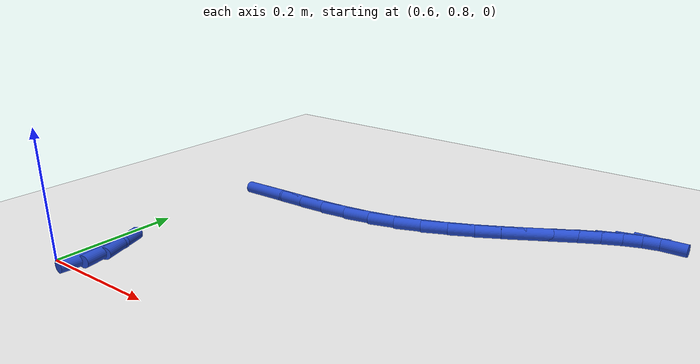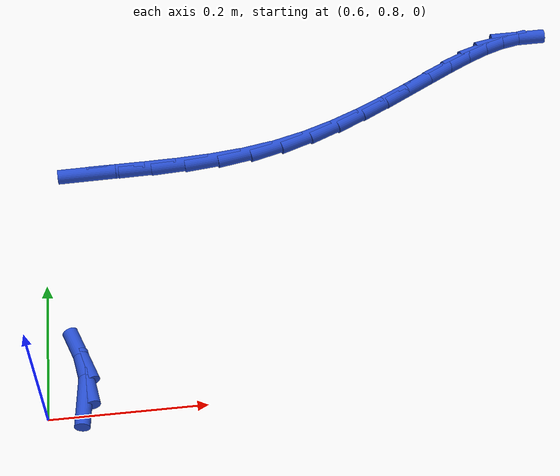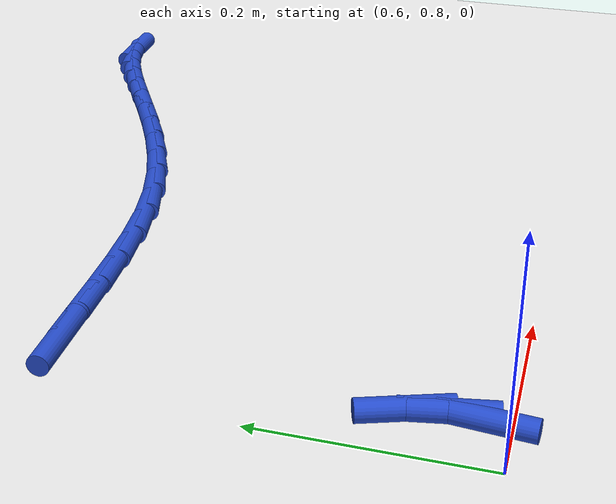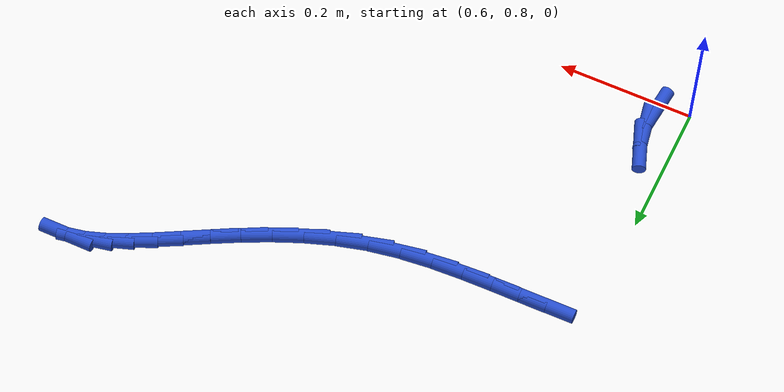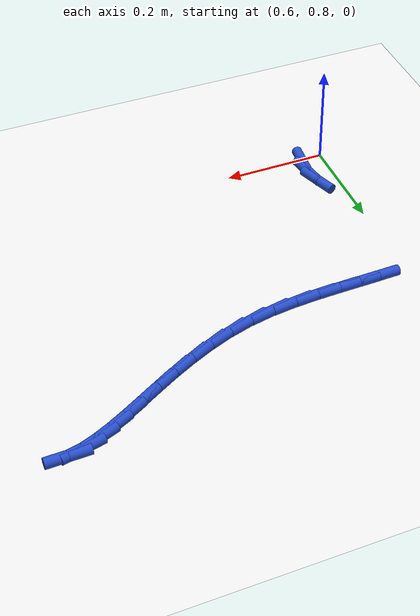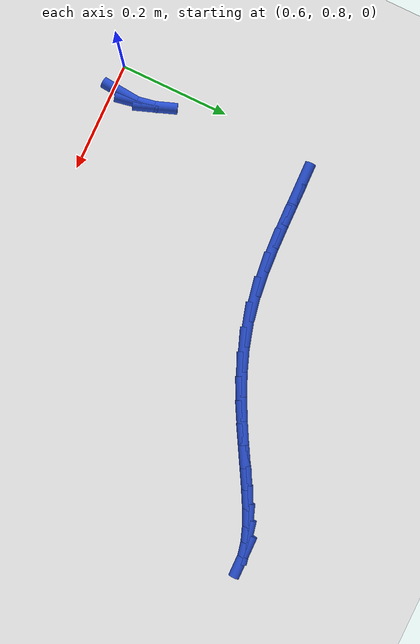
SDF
<sdf version="1.6">
 <world name="default">
  <model name="ground_plane">
   <static>1</static>
   <link name="link">
    <collision name="collision">
     <geometry><plane><normal>0 0 1</normal><size>100 100</size></plane></geometry>
     <surface><friction><ode><mu>100</mu><mu2>50</mu2></ode></friction></surface>
    </collision>
    <visual name="visual">
     <cast_shadows>0</cast_shadows>
     <geometry><plane><normal>0 0 1</normal><size>100 100</size></plane></geometry>
     <material>
      <script><uri>file://media/materials/scripts/gazebo.material</uri><name>Gazebo/WhiteGlow</name></script>
     </material>
    </visual>
   </link>
  </model>
  <model name="line">
   <link name="link_32">
    <pose>0.6466942165314001 0.8195110774820759 0.01 0 1.57 1.4784292683458358</pose>
    <collision name="collision">
     <geometry><cylinder><radius>0.01</radius><length>0.08</length></cylinder></geometry>
    </collision>
    <visual name="visual">
     <material>
      <script><name>Gazebo/Blue</name><uri>file://media/materials/scripts/gazebo.material</uri></script>
     </material>
     <geometry><cylinder><radius>0.01</radius><length>0.08</length></cylinder></geometry>
    </visual>
   </link>
   <link name="link_33">
    <pose>0.6494150384664269 0.8488838847848167 0.01 0 1.57 -1.3870676291814041</pose>
    <collision name="collision">
     <geometry><cylinder><radius>0.01</radius><length>0.08</length></cylinder></geometry>
    </collision>
    <visual name="visual">
     <material>
      <script><name>Gazebo/Blue</name><uri>file://media/materials/scripts/gazebo.material</uri></script>
     </material>
     <geometry><cylinder><radius>0.01</radius><length>0.08</length></cylinder></geometry>
    </visual>
   </link>
   <link name="link_34">
    <pose>0.6433069420436678 0.8817541579425682 0.01 0 1.57 -1.2231525068888396</pose>
    <collision name="collision">
     <geometry><cylinder><radius>0.01</radius><length>0.08</length></cylinder></geometry>
    </collision>
    <visual name="visual">
     <material>
      <script><name>Gazebo/Blue</name><uri>file://media/materials/scripts/gazebo.material</uri></script>
     </material>
     <geometry><cylinder><radius>0.01</radius><length>0.08</length></cylinder></geometry>
    </visual>
   </link>
   <link name="link_47">
    <pose>0.6569544206246336 1.1762229694583328 0.01 0 1.57 0.02289232079759322</pose>
    <collision name="collision">
     <geometry><cylinder><radius>0.01</radius><length>0.08</length></cylinder></geometry>
    </collision>
    <visual name="visual">
     <material>
      <script><name>Gazebo/Blue</name><uri>file://media/materials/scripts/gazebo.material</uri></script>
     </material>
     <geometry><cylinder><radius>0.01</radius><length>0.08</length></cylinder></geometry>
    </visual>
   </link>
   <link name="link_48">
    <pose>0.697269159671963 1.1771460286487352 0.01 0 1.57 0.016369971682927607</pose>
    <collision name="collision">
     <geometry><cylinder><radius>0.01</radius><length>0.08</length></cylinder></geometry>
    </collision>
    <visual name="visual">
     <material>
      <script><name>Gazebo/Blue</name><uri>file://media/materials/scripts/gazebo.material</uri></script>
     </material>
     <geometry><cylinder><radius>0.01</radius><length>0.08</length></cylinder></geometry>
    </visual>
   </link>
   <link name="link_49">
    <pose>0.7405746767513468 1.1778550020674512 0.01 0 1.57 0.03058642708066966</pose>
    <collision name="collision">
     <geometry><cylinder><radius>0.01</radius><length>0.08</length></cylinder></geometry>
    </collision>
    <visual name="visual">
     <material>
      <script><name>Gazebo/Blue</name><uri>file://media/materials/scripts/gazebo.material</uri></script>
     </material>
     <geometry><cylinder><radius>0.01</radius><length>0.08</length></cylinder></geometry>
    </visual>
   </link>
   <link name="link_50">
    <pose>0.7858508625001561 1.179240270834902 0.01 0 1.57 0.06377136231184242</pose>
    <collision name="collision">
     <geometry><cylinder><radius>0.01</radius><length>0.08</length></cylinder></geometry>
    </collision>
    <visual name="visual">
     <material>
      <script><name>Gazebo/Blue</name><uri>file://media/materials/scripts/gazebo.material</uri></script>
     </material>
     <geometry><cylinder><radius>0.01</radius><length>0.08</length></cylinder></geometry>
    </visual>
   </link>
   <link name="link_51">
    <pose>0.8320776075557633 1.1821922160715104 0.01 0 1.57 0.1166545065703392</pose>
    <collision name="collision">
     <geometry><cylinder><radius>0.01</radius><length>0.08</length></cylinder></geometry>
    </collision>
    <visual name="visual">
     <material>
      <script><name>Gazebo/Blue</name><uri>file://media/materials/scripts/gazebo.material</uri></script>
     </material>
     <geometry><cylinder><radius>0.01</radius><length>0.08</length></cylinder></geometry>
    </visual>
   </link>
   <link name="link_52">
    <pose>0.8782348025555402 1.1876012188976983 0.01 0 1.57 0.19184275539186518</pose>
    <collision name="collision">
     <geometry><cylinder><radius>0.01</radius><length>0.08</length></cylinder></geometry>
    </collision>
    <visual name="visual">
     <material>
      <script><name>Gazebo/Blue</name><uri>file://media/materials/scripts/gazebo.material</uri></script>
     </material>
     <geometry><cylinder><radius>0.01</radius><length>0.08</length></cylinder></geometry>
    </visual>
   </link>
   <link name="link_53">
    <pose>0.9233039177754145 1.196355057614738 0.01 0 1.57 0.2810676748567286</pose>
    <collision name="collision">
     <geometry><cylinder><radius>0.01</radius><length>0.08</length></cylinder></geometry>
    </collision>
    <visual name="visual">
     <material>
      <script><name>Gazebo/Blue</name><uri>file://media/materials/scripts/gazebo.material</uri></script>
     </material>
     <geometry><cylinder><radius>0.01</radius><length>0.08</length></cylinder></geometry>
    </visual>
   </link>
   <link name="link_54">
    <pose>0.9665673468203768 1.2088456698768362 0.01 0 1.57 0.3591092523486554</pose>
    <collision name="collision">
     <geometry><cylinder><radius>0.01</radius><length>0.08</length></cylinder></geometry>
    </collision>
    <visual name="visual">
     <material>
      <script><name>Gazebo/Blue</name><uri>file://media/materials/scripts/gazebo.material</uri></script>
     </material>
     <geometry><cylinder><radius>0.01</radius><length>0.08</length></cylinder></geometry>
    </visual>
   </link>
   <link name="link_55">
    <pose>1.0079629256603058 1.2243850007456292 0.01 0 1.57 0.4220027273728106</pose>
    <collision name="collision">
     <geometry><cylinder><radius>0.01</radius><length>0.08</length></cylinder></geometry>
    </collision>
    <visual name="visual">
     <material>
      <script><name>Gazebo/Blue</name><uri>file://media/materials/scripts/gazebo.material</uri></script>
     </material>
     <geometry><cylinder><radius>0.01</radius><length>0.08</length></cylinder></geometry>
    </visual>
   </link>
   <link name="link_56">
    <pose>1.047514754383584 1.2421428552350848 0.01 0 1.57 0.46956852440720714</pose>
    <collision name="collision">
     <geometry><cylinder><radius>0.01</radius><length>0.08</length></cylinder></geometry>
    </collision>
    <visual name="visual">
     <material>
      <script><name>Gazebo/Blue</name><uri>file://media/materials/scripts/gazebo.material</uri></script>
     </material>
     <geometry><cylinder><radius>0.01</radius><length>0.08</length></cylinder></geometry>
    </visual>
   </link>
   <link name="link_57">
    <pose>1.085246933078594 1.2612890383591713 0.01 0 1.57 0.5015427233821299</pose>
    <collision name="collision">
     <geometry><cylinder><radius>0.01</radius><length>0.08</length></cylinder></geometry>
    </collision>
    <visual name="visual">
     <material>
      <script><name>Gazebo/Blue</name><uri>file://media/materials/scripts/gazebo.material</uri></script>
     </material>
     <geometry><cylinder><radius>0.01</radius><length>0.08</length></cylinder></geometry>
    </visual>
   </link>
   <link name="link_58">
    <pose>1.1211835618337176 1.2809933551318569 0.01 0 1.57 0.5171424657023757</pose>
    <collision name="collision">
     <geometry><cylinder><radius>0.01</radius><length>0.08</length></cylinder></geometry>
    </collision>
    <visual name="visual">
     <material>
      <script><name>Gazebo/Blue</name><uri>file://media/materials/scripts/gazebo.material</uri></script>
     </material>
     <geometry><cylinder><radius>0.01</radius><length>0.08</length></cylinder></geometry>
    </visual>
   </link>
   <link name="link_59">
    <pose>1.1553487407373375 1.3004256105671101 0.01 0 1.57 0.5146121025029433</pose>
    <collision name="collision">
     <geometry><cylinder><radius>0.01</radius><length>0.08</length></cylinder></geometry>
    </collision>
    <visual name="visual">
     <material>
      <script><name>Gazebo/Blue</name><uri>file://media/materials/scripts/gazebo.material</uri></script>
     </material>
     <geometry><cylinder><radius>0.01</radius><length>0.08</length></cylinder></geometry>
    </visual>
   </link>
   <link name="link_60">
    <pose>1.1877665698778361 1.3187556096788993 0.01 0 1.57 0.4906445843342437</pose>
    <collision name="collision">
     <geometry><cylinder><radius>0.01</radius><length>0.08</length></cylinder></geometry>
    </collision>
    <visual name="visual">
     <material>
      <script><name>Gazebo/Blue</name><uri>file://media/materials/scripts/gazebo.material</uri></script>
     </material>
     <geometry><cylinder><radius>0.01</radius><length>0.08</length></cylinder></geometry>
    </visual>
   </link>
   <link name="link_61">
    <pose>1.2184611493435957 1.3351531574811926 0.01 0 1.57 0.4395600031045086</pose>
    <collision name="collision">
     <geometry><cylinder><radius>0.01</radius><length>0.08</length></cylinder></geometry>
    </collision>
    <visual name="visual">
     <material>
      <script><name>Gazebo/Blue</name><uri>file://media/materials/scripts/gazebo.material</uri></script>
     </material>
     <geometry><cylinder><radius>0.01</radius><length>0.08</length></cylinder></geometry>
    </visual>
   </link>
   <link name="link_62">
    <pose>1.2474565792229988 1.3487880589879582 0.01 0 1.57 0.3522378732071377</pose>
    <collision name="collision">
     <geometry><cylinder><radius>0.01</radius><length>0.08</length></cylinder></geometry>
    </collision>
    <visual name="visual">
     <material>
      <script><name>Gazebo/Blue</name><uri>file://media/materials/scripts/gazebo.material</uri></script>
     </material>
     <geometry><cylinder><radius>0.01</radius><length>0.08</length></cylinder></geometry>
    </visual>
   </link>
   <link name="link_63">
    <pose>1.2747769596044272 1.3588301192131642 0.01 0 1.57 0.21550030688081537</pose>
    <collision name="collision">
     <geometry><cylinder><radius>0.01</radius><length>0.08</length></cylinder></geometry>
    </collision>
    <visual name="visual">
     <material>
      <script><name>Gazebo/Blue</name><uri>file://media/materials/scripts/gazebo.material</uri></script>
     </material>
     <geometry><cylinder><radius>0.01</radius><length>0.08</length></cylinder></geometry>
    </visual>
   </link>
   <link name="link_64">
    <pose>1.3004463905762635 1.3644491431707793 0.01 0 1.57 0.015213195031420632</pose>
    <collision name="collision">
     <geometry><cylinder><radius>0.01</radius><length>0.08</length></cylinder></geometry>
    </collision>
    <visual name="visual">
     <material>
      <script><name>Gazebo/Blue</name><uri>file://media/materials/scripts/gazebo.material</uri></script>
     </material>
     <geometry><cylinder><radius>0.01</radius><length>0.08</length></cylinder></geometry>
    </visual>
   </link>
  </model>
 </world>
</sdf>
